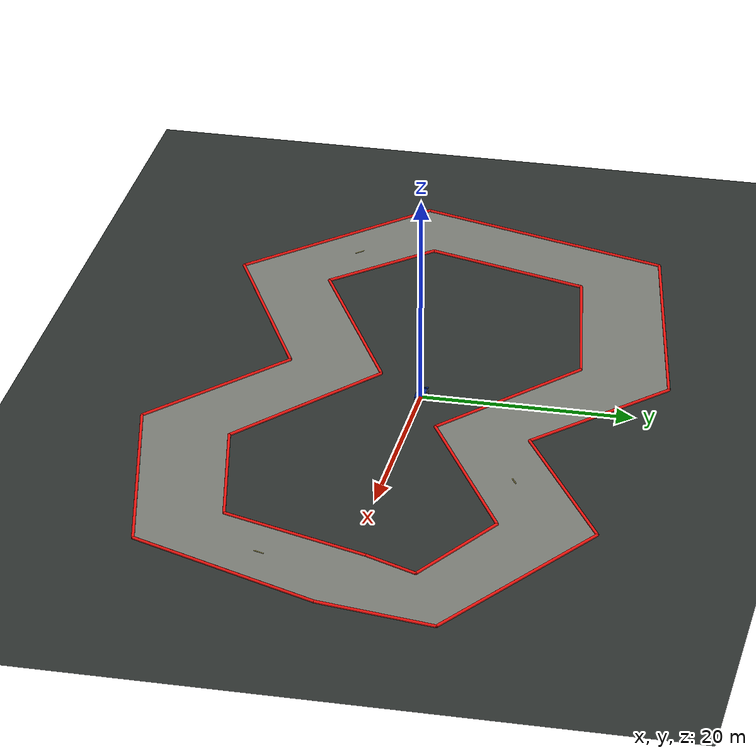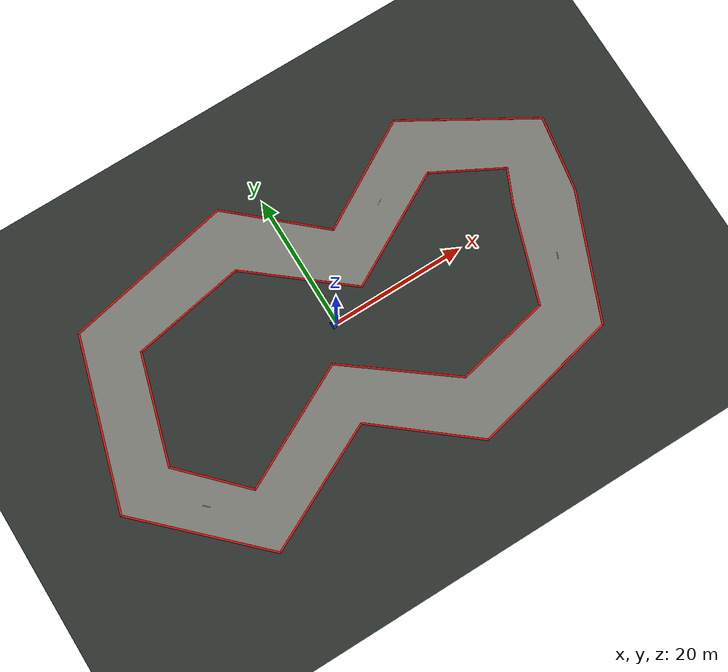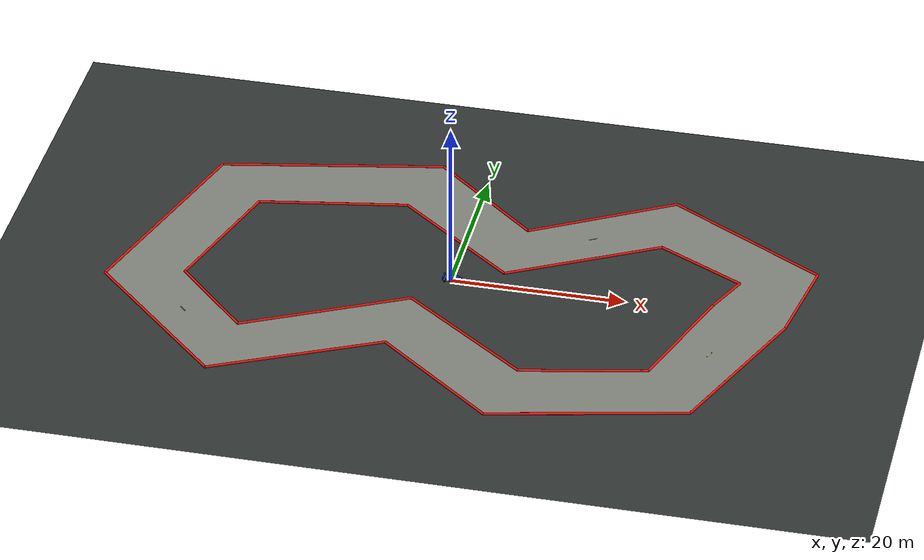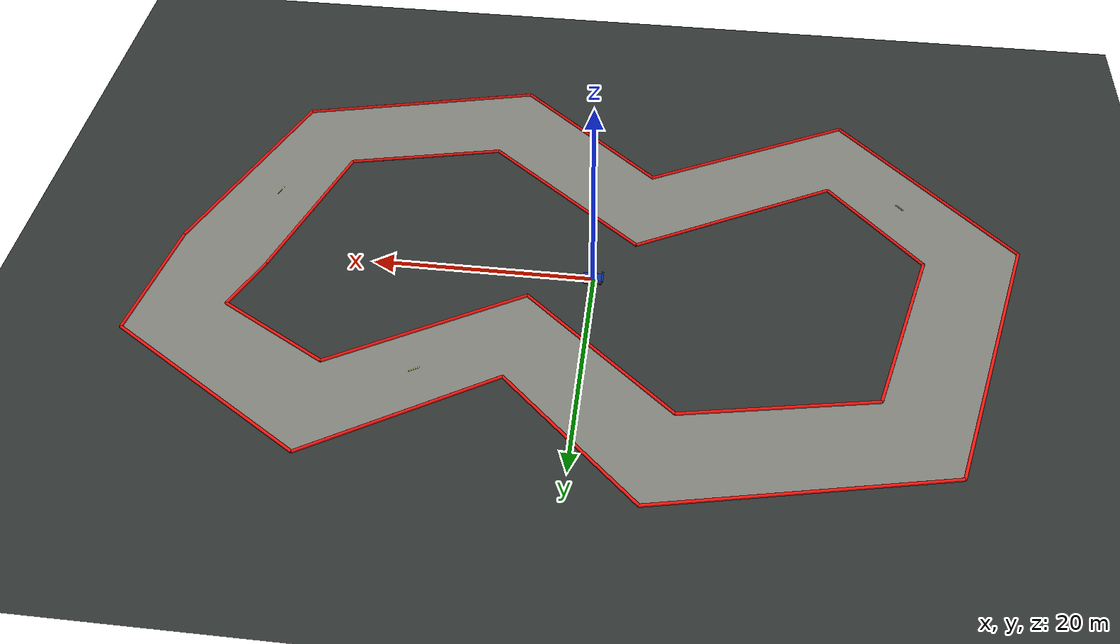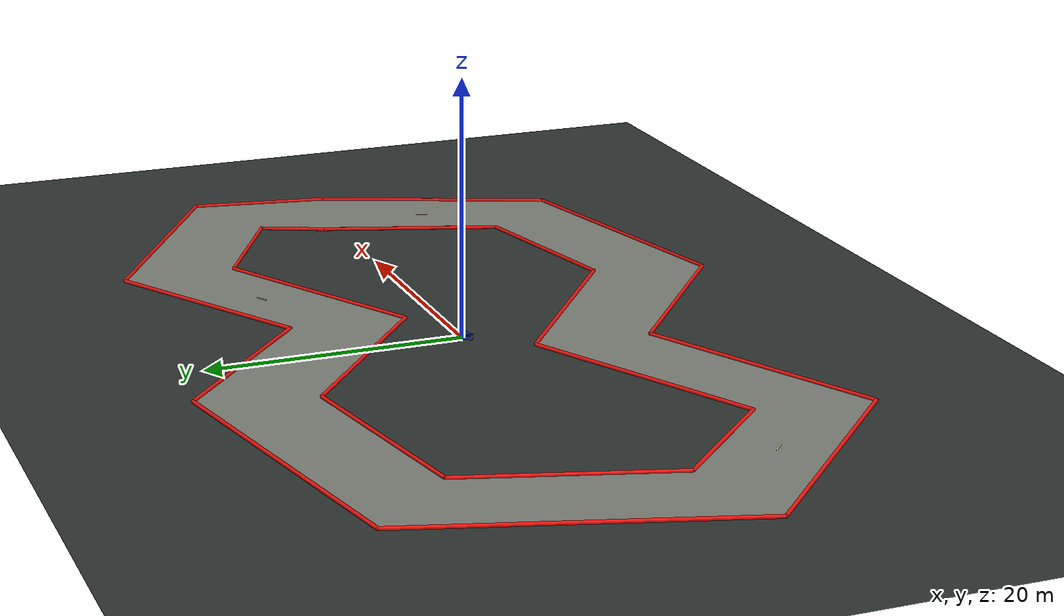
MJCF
<mujoco model="racesim_technical_world">
  <compiler angle="degree" autolimits="true"/>
  <option timestep="0.02" gravity="0 0 -9.81"/>
  <visual>
    <global offwidth="1280" offheight="960"/>
    <headlight ambient="0.35 0.35 0.35" diffuse="0.8 0.8 0.8"/>
  </visual>

  <include file="car.xml"/>
  <include file="technical_track.xml"/>

  <asset>
    <texture name="grid" type="2d" builtin="checker" width="512" height="512"
             rgb1="0.16 0.18 0.17" rgb2="0.20 0.22 0.21"/>
    <material name="ground" texture="grid" texrepeat="12 12" reflectance="0.05"/>
  </asset>

  <worldbody>
    <light name="sun" pos="0 0 30" dir="0 0 -1" diffuse="1.0 1.0 1.0" ambient="0.25 0.25 0.25"/>
    <geom name="ground" type="plane" size="80 80 0.1" material="ground"/>
    <camera name="topdown" pos="0 0 120" xyaxes="1 0 0 0 1 0" fovy="42"/>
    <camera name="follow" mode="trackcom" target="car" pos="-5 0 3" xyaxes="0 -1 0 0.5 0 0.866"/>
  </worldbody>
</mujoco>

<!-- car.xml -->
<mujoco model="simple_car">
  <default>
    <geom friction="1.2 0.02 0.001" density="600"/>
    <joint damping="0.1"/>
  </default>

  <asset>
    <material name="chassis_blue" rgba="0.05 0.18 0.55 1"/>
    <material name="wheel_dark" rgba="0.02 0.02 0.025 1"/>
  </asset>

  <worldbody>
    <body name="car" pos="0 0 0.28">
      <freejoint name="root"/>
      <geom name="chassis" type="box" size="0.9 0.45 0.12" material="chassis_blue"/>
      <geom name="nose" type="box" pos="0.75 0 0.02" size="0.45 0.25 0.06" material="chassis_blue"/>
      <geom name="rear_wing" type="box" pos="-0.85 0 0.22" size="0.08 0.55 0.04" material="chassis_blue"/>

      <body name="front_left_wheel" pos="0.65 0.48 -0.12">
        <joint name="front_left_spin" type="hinge" axis="0 1 0"/>
        <geom type="cylinder" size="0.18 0.08" euler="90 0 0" material="wheel_dark"/>
      </body>
      <body name="front_right_wheel" pos="0.65 -0.48 -0.12">
        <joint name="front_right_spin" type="hinge" axis="0 1 0"/>
        <geom type="cylinder" size="0.18 0.08" euler="90 0 0" material="wheel_dark"/>
      </body>
      <body name="rear_left_wheel" pos="-0.65 0.48 -0.12">
        <joint name="rear_left_spin" type="hinge" axis="0 1 0"/>
        <geom type="cylinder" size="0.18 0.08" euler="90 0 0" material="wheel_dark"/>
      </body>
      <body name="rear_right_wheel" pos="-0.65 -0.48 -0.12">
        <joint name="rear_right_spin" type="hinge" axis="0 1 0"/>
        <geom type="cylinder" size="0.18 0.08" euler="90 0 0" material="wheel_dark"/>
      </body>
    </body>
  </worldbody>
</mujoco>

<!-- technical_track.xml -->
<mujoco model="technical_track_visuals">
  <asset>
    <mesh name="track_surface_mesh" vertex="38.29651 -1.33790 0.02200 30.95146 -19.39689 0.02200 9.00194 -24.38792 0.02200 -4.45445 -13.47699 0.02200 -22.72082 -22.44189 0.02200 -38.36346 -7.10010 0.02200 -31.01357 17.34192 0.02200 -5.85611 22.35219 0.02200 6.42656 11.47974 0.02200 22.01520 20.49997 0.02200 40.13891 9.76620 0.02200 29.70349 1.33790 0.02200 25.04854 -12.60311 0.02200 10.99806 -15.61208 0.02200 -3.54555 -4.52301 0.02200 -21.27918 -13.55811 0.02200 -29.63654 -4.89990 0.02200 -24.98643 10.65808 0.02200 -8.14389 13.64781 0.02200 5.57344 2.52026 0.02200 21.98480 11.50003 0.02200 31.86109 6.23380 0.02200" face="0 12 1 0 11 12 1 13 2 1 12 13 2 14 3 2 13 14 3 15 4 3 14 15 4 16 5 4 15 16 5 17 6 5 16 17 6 18 7 6 17 18 7 19 8 7 18 19 8 20 9 8 19 20 9 21 10 9 20 21 10 11 0 10 21 11"/>
    <material name="track_asphalt" rgba="0.48 0.49 0.46 1" emission="0.08"/>
    <material name="track_boundary" rgba="0.95 0.08 0.06 1" emission="0.05"/>
    <material name="track_centerline" rgba="1.0 0.95 0.55 1" emission="0.15"/>
  </asset>
  <worldbody>
    <geom name="track_surface" type="mesh" mesh="track_surface_mesh" material="track_asphalt" contype="0" conaffinity="0"/>
    <geom name="track_left_boundary_000" type="capsule" fromto="38.29651 -1.33790 0.09 30.95146 -19.39689 0.09" size="0.14" material="track_boundary" contype="0" conaffinity="0"/>
    <geom name="track_left_boundary_001" type="capsule" fromto="30.95146 -19.39689 0.09 9.00194 -24.38792 0.09" size="0.14" material="track_boundary" contype="0" conaffinity="0"/>
    <geom name="track_left_boundary_002" type="capsule" fromto="9.00194 -24.38792 0.09 -4.45445 -13.47699 0.09" size="0.14" material="track_boundary" contype="0" conaffinity="0"/>
    <geom name="track_left_boundary_003" type="capsule" fromto="-4.45445 -13.47699 0.09 -22.72082 -22.44189 0.09" size="0.14" material="track_boundary" contype="0" conaffinity="0"/>
    <geom name="track_left_boundary_004" type="capsule" fromto="-22.72082 -22.44189 0.09 -38.36346 -7.10010 0.09" size="0.14" material="track_boundary" contype="0" conaffinity="0"/>
    <geom name="track_left_boundary_005" type="capsule" fromto="-38.36346 -7.10010 0.09 -31.01357 17.34192 0.09" size="0.14" material="track_boundary" contype="0" conaffinity="0"/>
    <geom name="track_left_boundary_006" type="capsule" fromto="-31.01357 17.34192 0.09 -5.85611 22.35219 0.09" size="0.14" material="track_boundary" contype="0" conaffinity="0"/>
    <geom name="track_left_boundary_007" type="capsule" fromto="-5.85611 22.35219 0.09 6.42656 11.47974 0.09" size="0.14" material="track_boundary" contype="0" conaffinity="0"/>
    <geom name="track_left_boundary_008" type="capsule" fromto="6.42656 11.47974 0.09 22.01520 20.49997 0.09" size="0.14" material="track_boundary" contype="0" conaffinity="0"/>
    <geom name="track_left_boundary_009" type="capsule" fromto="22.01520 20.49997 0.09 40.13891 9.76620 0.09" size="0.14" material="track_boundary" contype="0" conaffinity="0"/>
    <geom name="track_left_boundary_010" type="capsule" fromto="40.13891 9.76620 0.09 38.29651 -1.33790 0.09" size="0.14" material="track_boundary" contype="0" conaffinity="0"/>
    <geom name="track_right_boundary_000" type="capsule" fromto="29.70349 1.33790 0.09 25.04854 -12.60311 0.09" size="0.14" material="track_boundary" contype="0" conaffinity="0"/>
    <geom name="track_right_boundary_001" type="capsule" fromto="25.04854 -12.60311 0.09 10.99806 -15.61208 0.09" size="0.14" material="track_boundary" contype="0" conaffinity="0"/>
    <geom name="track_right_boundary_002" type="capsule" fromto="10.99806 -15.61208 0.09 -3.54555 -4.52301 0.09" size="0.14" material="track_boundary" contype="0" conaffinity="0"/>
    <geom name="track_right_boundary_003" type="capsule" fromto="-3.54555 -4.52301 0.09 -21.27918 -13.55811 0.09" size="0.14" material="track_boundary" contype="0" conaffinity="0"/>
    <geom name="track_right_boundary_004" type="capsule" fromto="-21.27918 -13.55811 0.09 -29.63654 -4.89990 0.09" size="0.14" material="track_boundary" contype="0" conaffinity="0"/>
    <geom name="track_right_boundary_005" type="capsule" fromto="-29.63654 -4.89990 0.09 -24.98643 10.65808 0.09" size="0.14" material="track_boundary" contype="0" conaffinity="0"/>
    <geom name="track_right_boundary_006" type="capsule" fromto="-24.98643 10.65808 0.09 -8.14389 13.64781 0.09" size="0.14" material="track_boundary" contype="0" conaffinity="0"/>
    <geom name="track_right_boundary_007" type="capsule" fromto="-8.14389 13.64781 0.09 5.57344 2.52026 0.09" size="0.14" material="track_boundary" contype="0" conaffinity="0"/>
    <geom name="track_right_boundary_008" type="capsule" fromto="5.57344 2.52026 0.09 21.98480 11.50003 0.09" size="0.14" material="track_boundary" contype="0" conaffinity="0"/>
    <geom name="track_right_boundary_009" type="capsule" fromto="21.98480 11.50003 0.09 31.86109 6.23380 0.09" size="0.14" material="track_boundary" contype="0" conaffinity="0"/>
    <geom name="track_right_boundary_010" type="capsule" fromto="31.86109 6.23380 0.09 29.70349 1.33790 0.09" size="0.14" material="track_boundary" contype="0" conaffinity="0"/>
    <geom name="track_center_mark_000" type="box" pos="31.00000 -8.00000 0.045" euler="0 0 -110.55605" size="0.50000 0.04500 0.018" material="track_centerline" contype="0" conaffinity="0"/>
    <geom name="track_center_mark_004" type="box" pos="-28.00000 -12.00000 0.045" euler="0 0 135.00000" size="0.50000 0.04500 0.018" material="track_centerline" contype="0" conaffinity="0"/>
    <geom name="track_center_mark_008" type="box" pos="14.00000 11.50000 0.045" euler="0 0 29.35775" size="0.50000 0.04500 0.018" material="track_centerline" contype="0" conaffinity="0"/>
  </worldbody>
</mujoco>
